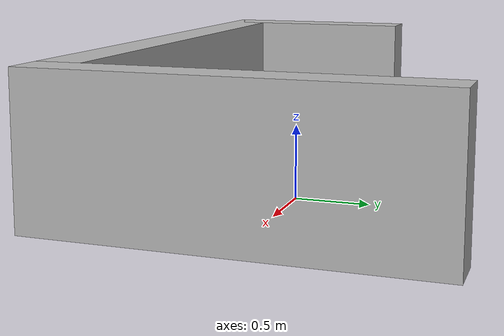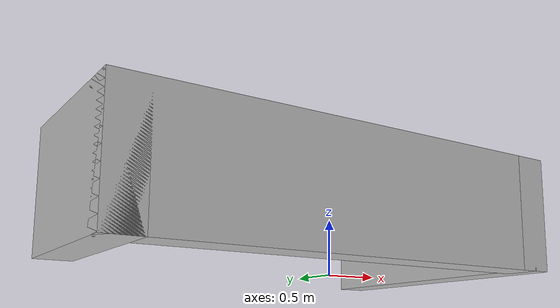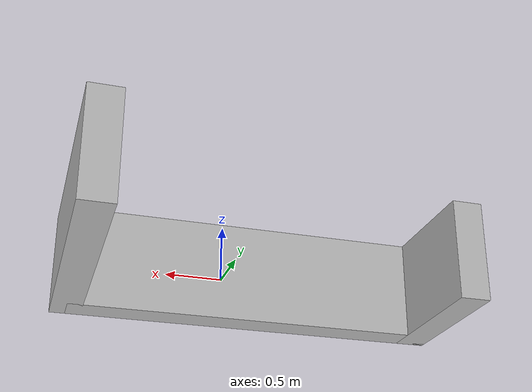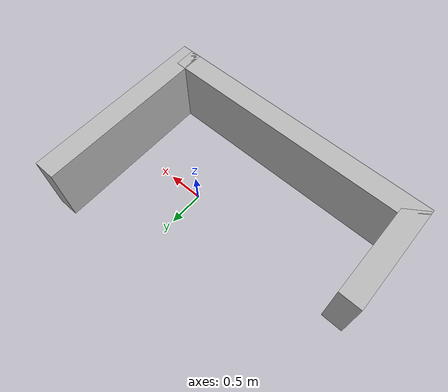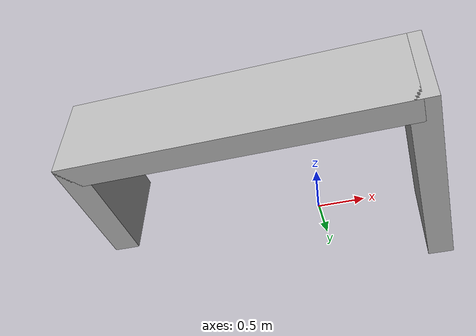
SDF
<?xml version="1.0"?>
<sdf version="1.10">
  <model name="harbour_reverse_stern_port">
    <static>true</static>
    <!-- Mirrored C-shaped berth. The only clear reverse arc moves the stern
         towards port (+Y). -->
    <link name="quay">
      <collision name="front_collision">
        <pose>1.25 0 0.5 0 0 0</pose>
        <geometry><box><size>0.30 2.60 1.0</size></box></geometry>
      </collision>
      <visual name="front_visual">
        <pose>1.25 0 0.5 0 0 0</pose>
        <geometry><box><size>0.30 2.60 1.0</size></box></geometry>
      </visual>
      <collision name="starboard_collision">
        <pose>-0.65 -1.15 0.5 0 0 0</pose>
        <geometry><box><size>3.80 0.30 1.0</size></box></geometry>
      </collision>
      <visual name="starboard_visual">
        <pose>-0.65 -1.15 0.5 0 0 0</pose>
        <geometry><box><size>3.80 0.30 1.0</size></box></geometry>
      </visual>
      <collision name="aft_collision">
        <pose>-2.40 -0.55 0.5 0 0 0</pose>
        <geometry><box><size>0.30 1.50 1.0</size></box></geometry>
      </collision>
      <visual name="aft_visual">
        <pose>-2.40 -0.55 0.5 0 0 0</pose>
        <geometry><box><size>0.30 1.50 1.0</size></box></geometry>
      </visual>
    </link>
  </model>
</sdf>
